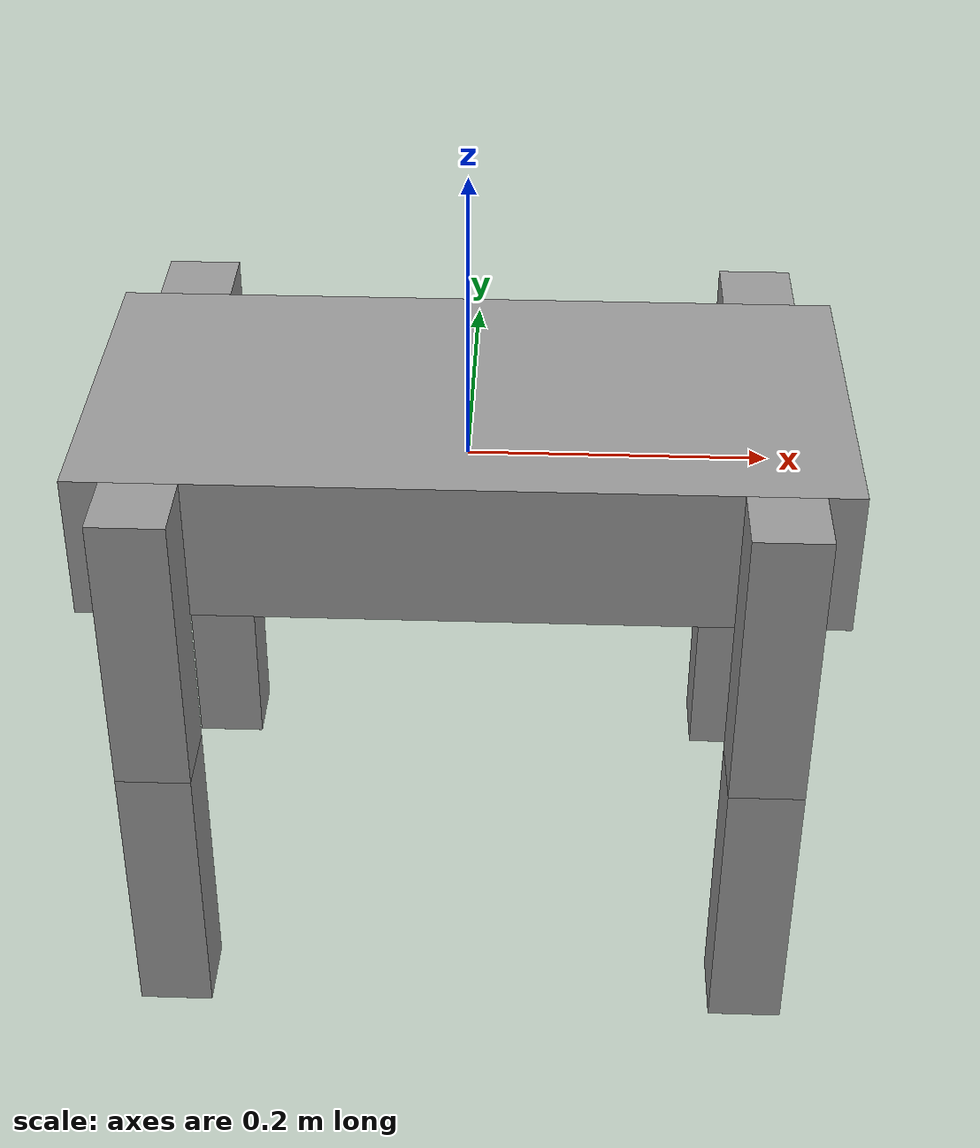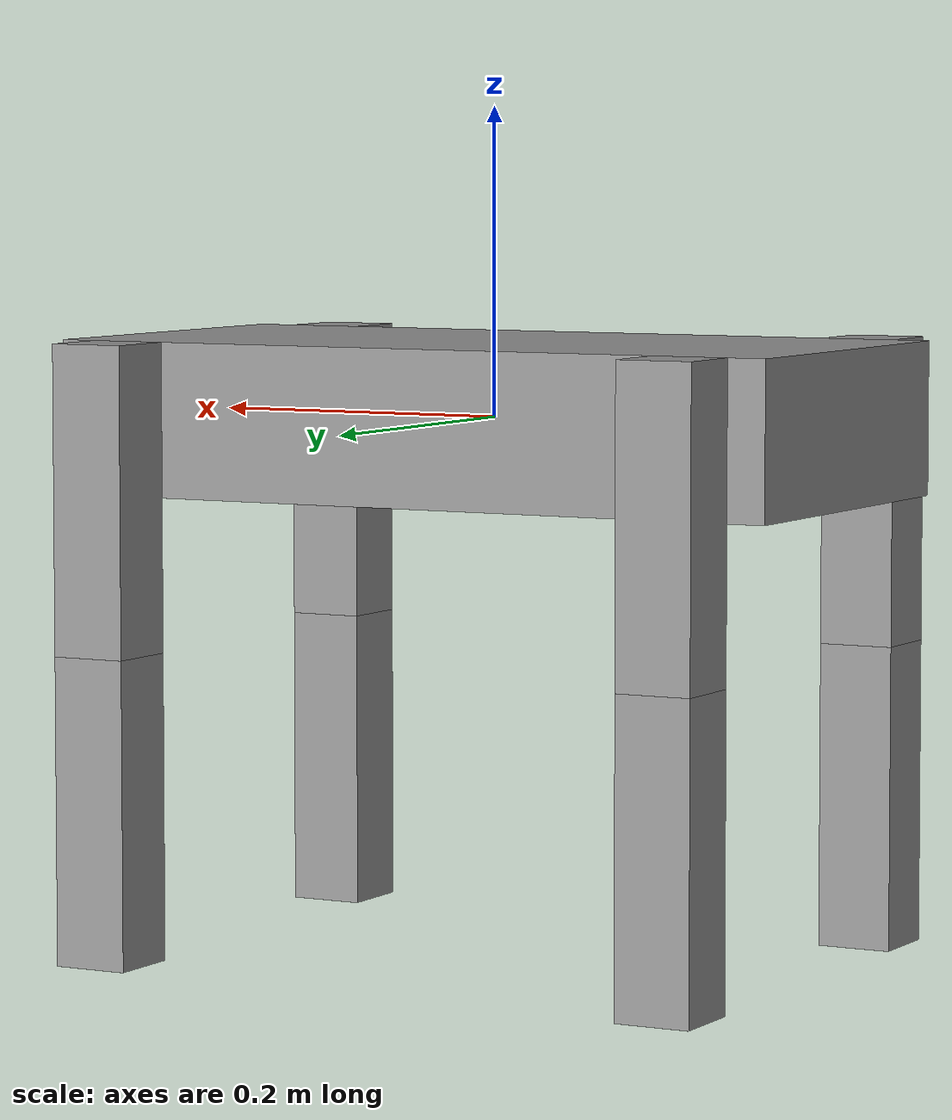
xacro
<?xml version="1.0"?>
<robot name="quadruped_robot" xmlns:xacro="http://ros.org/wiki/xacro">

	<xacro:arg name="is_fixed" default="false"/>

	<!-- Include Materials -->
	<xacro:include filename="materials.xacro"/>

	<!-- Include Inertial Macros -->
	<xacro:include filename="inertias.xacro"/>

	<!-- Property Definition -->
	<xacro:property name="joint_limit_low" value="-3.14"/>
	<xacro:property name="joint_limit_up" value="3.14"/>

	<!-- Macros for Links and Joints -->
	<xacro:macro name="create_link" params="name base_size x y z material:=grey">
		<link name="${name}">
			<xacro:box_inertial_with_origin x="${x}" y="${y}" z="${z}" mass="1">
				<origin xyz="0 0 0"/>
			</xacro:box_inertial_with_origin>
			<visual>
				<origin xyz="${x} ${y} ${z}"/>
				<geometry>
					<box size="${base_size}"/>
				</geometry>
				<material name="${material}"/>
			</visual>
			<collision>
				<origin xyz="${x} ${y} ${z}"/>
				<geometry>
					<box size="${base_size}"/>
				</geometry>
			</collision>
		</link>
	</xacro:macro>

	<xacro:macro name="create_joint" params="name parent child x y z">
		<joint name="${name}" type="revolute">
			<parent link="${parent}"/>
			<child link="${child}"/>
			<origin xyz="${x} ${y} ${z}"/>
			<axis xyz="0 -1 0"/>
			<limit lower="${joint_limit_low}" upper="${joint_limit_up}" effort="100" velocity="0.1"/>
			<dynamics damping="0.1" friction="0.1"/>
		</joint>
	</xacro:macro>

	<!-- Links -->
	<xacro:create_link name="base" base_size="0.5 0.25 0.1" x="0" y="0" z="0"/>

	<xacro:if value="$(arg is_fixed)">
		<link name="world"/>
		<joint name="fixed" type="fixed">
			<parent link="world"/>
			<child link="base"/>
		</joint>
	</xacro:if>

	<xacro:create_link name="up_leg_fl" base_size="0.05 0.05 0.2" x="0" y="0.15" z="-0.05"/>
	<xacro:create_link name="up_leg_fr" base_size="0.05 0.05 0.2" x="0" y="-0.15" z="-0.05"/>
	<xacro:create_link name="up_leg_bl" base_size="0.05 0.05 0.2" x="0" y="0.15" z="-0.05"/>
	<xacro:create_link name="up_leg_br" base_size="0.05 0.05 0.2" x="0" y="-0.15" z="-0.05"/>
	<xacro:create_link name="bottom_leg_fl" base_size="0.05 0.05 0.2" x="0" y="0" z="-0.1"/>
	<xacro:create_link name="bottom_leg_fr" base_size="0.05 0.05 0.2" x="0" y="0" z="-0.1"/>
	<xacro:create_link name="bottom_leg_bl" base_size="0.05 0.05 0.2" x="0" y="0" z="-0.1"/>
	<xacro:create_link name="bottom_leg_br" base_size="0.05 0.05 0.2" x="0" y="0" z="-0.1"/>

	<!-- Joints -->
	<xacro:create_joint name="up_fl" parent="base" child="up_leg_fl" x="0.2" y="0" z="0"/>
	<xacro:create_joint name="up_fr" parent="base" child="up_leg_fr" x="0.2" y="0" z="0"/>
	<xacro:create_joint name="up_bl" parent="base" child="up_leg_bl" x="-0.2" y="0" z="0"/>
	<xacro:create_joint name="up_br" parent="base" child="up_leg_br" x="-0.2" y="0" z="0"/>
	<xacro:create_joint name="bottom_fl" parent="up_leg_fl" child="bottom_leg_fl" x="0" y="0.15" z="-0.15"/>
	<xacro:create_joint name="bottom_fr" parent="up_leg_fr" child="bottom_leg_fr" x="0" y="-0.15" z="-0.15"/>
	<xacro:create_joint name="bottom_bl" parent="up_leg_bl" child="bottom_leg_bl" x="0" y="0.15" z="-0.15"/>
	<xacro:create_joint name="bottom_br" parent="up_leg_br" child="bottom_leg_br" x="0" y="-0.15" z="-0.15"/>
</robot>
